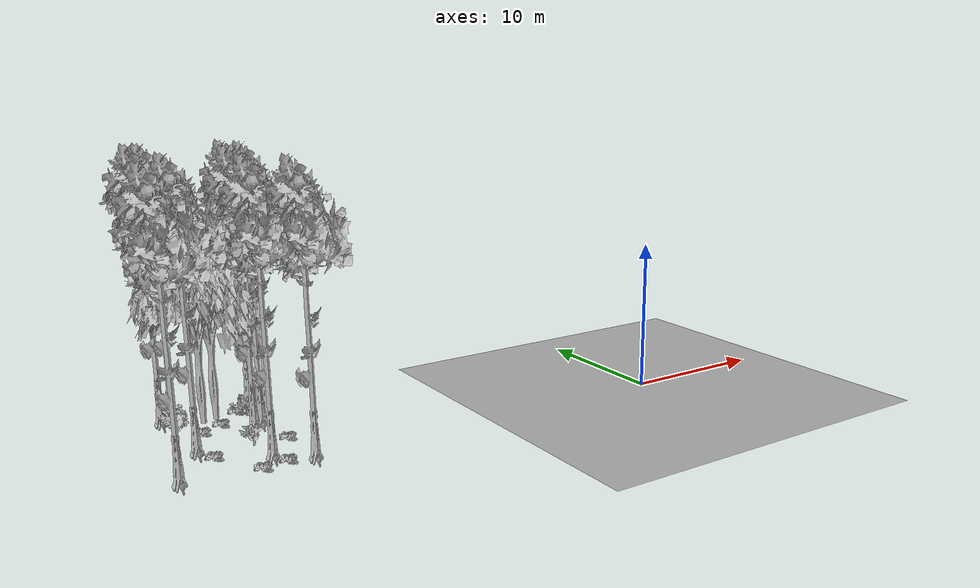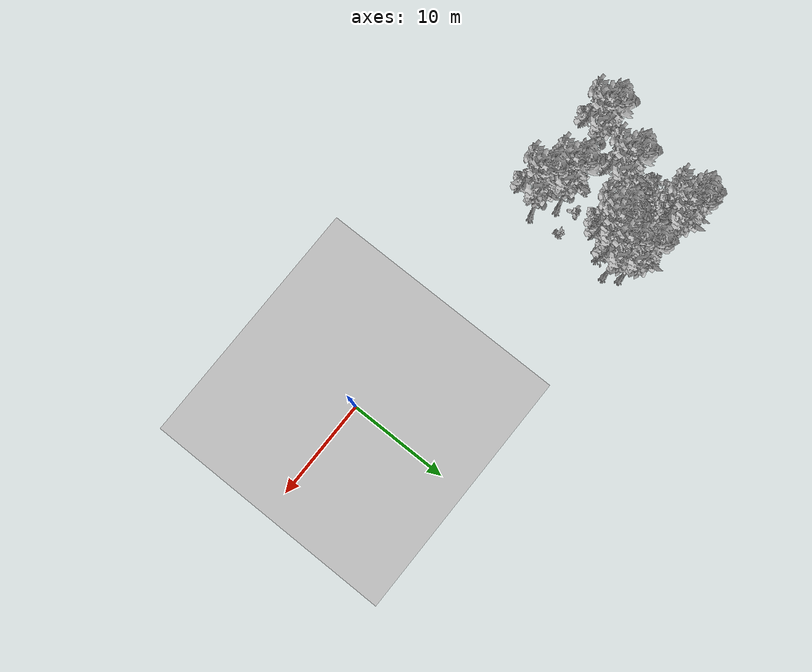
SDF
<sdf version="1.7">
 <world name="default">
  <model name="ground_plane">
   <static>1</static>
   <link name="link">
    <collision name="collision">
     <pose>-50 0 0 0 -0 0</pose>
     <geometry><plane><normal>0 0 1</normal><size>80 80</size></plane></geometry>
     <surface><contact><ode><min_depth>0.01</min_depth><max_vel>0</max_vel></ode></contact></surface>
    </collision>
    <visual name="grass">
     <cast_shadows>0</cast_shadows>
     <geometry>
      <mesh>
       <scale>0.46714285714285714 0.46714285714285714 0.1</scale>
       <uri>file://grass_plane/meshes/grass_plane.dae</uri>
      </mesh>
     </geometry>
    </visual>
   </link>
  </model>
  <model name="Tree 6">
   <static>1</static>
   <pose>-27.933836475124316 9.971024131339455 0 1.57079 -0 0</pose>
   <link name="link">
    <collision name="collision">
     <geometry><mesh><scale>3.5 5 3.5</scale><uri>model://tree_2/meshes/tree_2.obj</uri></mesh></geometry>
    </collision>
    <visual name="visual">
     <geometry><mesh><scale>3.5 5 3.5</scale><uri>model://tree_2/meshes/tree_2.obj</uri></mesh></geometry>
    </visual>
   </link>
  </model>
  <model name="Tree 10">
   <static>1</static>
   <pose>-25.93647866401887 3.074874967592052 0 1.57079 -0 0</pose>
   <link name="link">
    <collision name="collision">
     <geometry><mesh><scale>3.5 5 3.5</scale><uri>model://tree_9/meshes/tree_9.obj</uri></mesh></geometry>
    </collision>
    <visual name="visual">
     <geometry><mesh><scale>3.5 5 3.5</scale><uri>model://tree_9/meshes/tree_9.obj</uri></mesh></geometry>
    </visual>
   </link>
  </model>
  <model name="Tree 25">
   <static>1</static>
   <pose>-23.874072191830358 1.5541618502225703 0 1.57079 -0 0</pose>
   <link name="link">
    <collision name="collision">
     <geometry><mesh><scale>3.5 5 3.5</scale><uri>model://tree_9/meshes/tree_9.obj</uri></mesh></geometry>
    </collision>
    <visual name="visual">
     <geometry><mesh><scale>3.5 5 3.5</scale><uri>model://tree_9/meshes/tree_9.obj</uri></mesh></geometry>
    </visual>
   </link>
  </model>
  <model name="Tree 92">
   <static>1</static>
   <pose>-27.03510599463497 10.263967634765983 0 1.57079 -0 0</pose>
   <link name="link">
    <collision name="collision">
     <geometry><mesh><scale>3.5 5 3.5</scale><uri>model://tree_2/meshes/tree_2.obj</uri></mesh></geometry>
    </collision>
    <visual name="visual">
     <geometry><mesh><scale>3.5 5 3.5</scale><uri>model://tree_2/meshes/tree_2.obj</uri></mesh></geometry>
    </visual>
   </link>
  </model>
  <model name="Tree 100">
   <static>1</static>
   <pose>-29.47319791704583 6.159538547791271 0 1.57079 -0 0</pose>
   <link name="link">
    <collision name="collision">
     <geometry><mesh><scale>3.5 5 3.5</scale><uri>model://tree_9/meshes/tree_9.obj</uri></mesh></geometry>
    </collision>
    <visual name="visual">
     <geometry><mesh><scale>3.5 5 3.5</scale><uri>model://tree_9/meshes/tree_9.obj</uri></mesh></geometry>
    </visual>
   </link>
  </model>
  <model name="Tree 335">
   <static>1</static>
   <pose>-23.581077744409292 10.317523921719662 0 1.57079 -0 0</pose>
   <link name="link">
    <collision name="collision">
     <geometry><mesh><scale>3.5 5 3.5</scale><uri>model://tree_9/meshes/tree_9.obj</uri></mesh></geometry>
    </collision>
    <visual name="visual">
     <geometry><mesh><scale>3.5 5 3.5</scale><uri>model://tree_9/meshes/tree_9.obj</uri></mesh></geometry>
    </visual>
   </link>
  </model>
  <model name="Tree 345">
   <static>1</static>
   <pose>-24.344443440398514 11.627869771685937 0 1.57079 -0 0</pose>
   <link name="link">
    <collision name="collision">
     <geometry><mesh><scale>3.5 5 3.5</scale><uri>model://tree_9/meshes/tree_9.obj</uri></mesh></geometry>
    </collision>
    <visual name="visual">
     <geometry><mesh><scale>3.5 5 3.5</scale><uri>model://tree_9/meshes/tree_9.obj</uri></mesh></geometry>
    </visual>
   </link>
  </model>
  <model name="Tree 349">
   <static>1</static>
   <pose>-29.179767878455028 12.33024798123553 0 1.57079 -0 0</pose>
   <link name="link">
    <collision name="collision">
     <geometry><mesh><scale>3.5 5 3.5</scale><uri>model://tree_9/meshes/tree_9.obj</uri></mesh></geometry>
    </collision>
    <visual name="visual">
     <geometry><mesh><scale>3.5 5 3.5</scale><uri>model://tree_9/meshes/tree_9.obj</uri></mesh></geometry>
    </visual>
   </link>
  </model>
  <model name="Tree 394">
   <static>1</static>
   <pose>-25.205027041423754 8.20902475862411 0 1.57079 -0 0</pose>
   <link name="link">
    <collision name="collision">
     <geometry><mesh><scale>3.5 5 3.5</scale><uri>model://tree_9/meshes/tree_9.obj</uri></mesh></geometry>
    </collision>
    <visual name="visual">
     <geometry><mesh><scale>3.5 5 3.5</scale><uri>model://tree_9/meshes/tree_9.obj</uri></mesh></geometry>
    </visual>
   </link>
  </model>
  <model name="Tree 416">
   <static>1</static>
   <pose>-29.91393668928618 12.23142361629418 0 1.57079 -0 0</pose>
   <link name="link">
    <collision name="collision">
     <geometry><mesh><scale>3.5 5 3.5</scale><uri>model://tree_9/meshes/tree_9.obj</uri></mesh></geometry>
    </collision>
    <visual name="visual">
     <geometry><mesh><scale>3.5 5 3.5</scale><uri>model://tree_9/meshes/tree_9.obj</uri></mesh></geometry>
    </visual>
   </link>
  </model>
  <model name="Tree 488">
   <static>1</static>
   <pose>-31.63750277075983 2.250928446385309 0 1.57079 -0 0</pose>
   <link name="link">
    <collision name="collision">
     <geometry><mesh><scale>3.5 5 3.5</scale><uri>model://tree_9/meshes/tree_9.obj</uri></mesh></geometry>
    </collision>
    <visual name="visual">
     <geometry><mesh><scale>3.5 5 3.5</scale><uri>model://tree_9/meshes/tree_9.obj</uri></mesh></geometry>
    </visual>
   </link>
  </model>
  <model name="Tree 624">
   <static>1</static>
   <pose>-24.562253628646644 8.754854475768184 0 1.57079 -0 0</pose>
   <link name="link">
    <collision name="collision">
     <geometry><mesh><scale>3.5 5 3.5</scale><uri>model://tree_9/meshes/tree_9.obj</uri></mesh></geometry>
    </collision>
    <visual name="visual">
     <geometry><mesh><scale>3.5 5 3.5</scale><uri>model://tree_9/meshes/tree_9.obj</uri></mesh></geometry>
    </visual>
   </link>
  </model>
  <model name="Bush 58">
   <static>1</static>
   <pose>-24.413937323106673 4.5149087698000585 0 1.57079 -0 0</pose>
   <link name="link">
    <collision name="collision">
     <geometry><mesh><scale>2 2 2</scale><uri>model://bush_2/meshes/bush_2.obj</uri></mesh></geometry>
     <surface><contact><collide_without_contact>false</collide_without_contact></contact></surface>
    </collision>
    <visual name="visual">
     <geometry><mesh><scale>2 2 2</scale><uri>model://bush_2/meshes/bush_2.obj</uri></mesh></geometry>
    </visual>
   </link>
  </model>
  <model name="Bush 94">
   <static>1</static>
   <pose>-25.572861129804625 10.56565452932471 0 1.57079 -0 0</pose>
   <link name="link">
    <collision name="collision">
     <geometry><mesh><scale>2 2 2</scale><uri>model://bush_2/meshes/bush_2.obj</uri></mesh></geometry>
     <surface><contact><collide_without_contact>false</collide_without_contact></contact></surface>
    </collision>
    <visual name="visual">
     <geometry><mesh><scale>2 2 2</scale><uri>model://bush_2/meshes/bush_2.obj</uri></mesh></geometry>
    </visual>
   </link>
  </model>
  <model name="Bush 181">
   <static>1</static>
   <pose>-29.12438790901557 3.9534212077692317 0 1.57079 -0 0</pose>
   <link name="link">
    <collision name="collision">
     <geometry><mesh><scale>2 2 2</scale><uri>model://bush_2/meshes/bush_2.obj</uri></mesh></geometry>
     <surface><contact><collide_without_contact>false</collide_without_contact></contact></surface>
    </collision>
    <visual name="visual">
     <geometry><mesh><scale>2 2 2</scale><uri>model://bush_2/meshes/bush_2.obj</uri></mesh></geometry>
    </visual>
   </link>
  </model>
  <model name="Bush 214">
   <static>1</static>
   <pose>-25.71185770678229 1.1737137461170306 0 1.57079 -0 0</pose>
   <link name="link">
    <collision name="collision">
     <geometry><mesh><scale>2 2 2</scale><uri>model://bush_2/meshes/bush_2.obj</uri></mesh></geometry>
     <surface><contact><collide_without_contact>false</collide_without_contact></contact></surface>
    </collision>
    <visual name="visual">
     <geometry><mesh><scale>2 2 2</scale><uri>model://bush_2/meshes/bush_2.obj</uri></mesh></geometry>
    </visual>
   </link>
  </model>
  <model name="Bush 272">
   <static>1</static>
   <pose>-25.327018211420437 9.97624668884719 0 1.57079 -0 0</pose>
   <link name="link">
    <collision name="collision">
     <geometry><mesh><scale>2 2 2</scale><uri>model://bush_4/meshes/bush_4.obj</uri></mesh></geometry>
     <surface><contact><collide_without_contact>false</collide_without_contact></contact></surface>
    </collision>
    <visual name="visual">
     <geometry><mesh><scale>2 2 2</scale><uri>model://bush_4/meshes/bush_4.obj</uri></mesh></geometry>
    </visual>
   </link>
  </model>
  <model name="Bush 279">
   <static>1</static>
   <pose>-24.84057523737124 9.129196742946384 0 1.57079 -0 0</pose>
   <link name="link">
    <collision name="collision">
     <geometry><mesh><scale>2 2 2</scale><uri>model://bush_4/meshes/bush_4.obj</uri></mesh></geometry>
     <surface><contact><collide_without_contact>false</collide_without_contact></contact></surface>
    </collision>
    <visual name="visual">
     <geometry><mesh><scale>2 2 2</scale><uri>model://bush_4/meshes/bush_4.obj</uri></mesh></geometry>
    </visual>
   </link>
  </model>
  <model name="Bush 339">
   <static>1</static>
   <pose>-27.311216681140642 0.8931305080150906 0 1.57079 -0 0</pose>
   <link name="link">
    <collision name="collision">
     <geometry><mesh><scale>2 2 2</scale><uri>model://bush_2/meshes/bush_2.obj</uri></mesh></geometry>
     <surface><contact><collide_without_contact>false</collide_without_contact></contact></surface>
    </collision>
    <visual name="visual">
     <geometry><mesh><scale>2 2 2</scale><uri>model://bush_2/meshes/bush_2.obj</uri></mesh></geometry>
    </visual>
   </link>
  </model>
  <model name="Bush 473">
   <static>1</static>
   <pose>-29.885950203166946 8.84874675289442 0 1.57079 -0 0</pose>
   <link name="link">
    <collision name="collision">
     <geometry><mesh><scale>2 2 2</scale><uri>model://bush_1/meshes/bush_1.obj</uri></mesh></geometry>
     <surface><contact><collide_without_contact>false</collide_without_contact></contact></surface>
    </collision>
    <visual name="visual">
     <geometry><mesh><scale>2 2 2</scale><uri>model://bush_1/meshes/bush_1.obj</uri></mesh></geometry>
    </visual>
   </link>
  </model>
  <model name="Bush 560">
   <static>1</static>
   <pose>-28.529918268819216 8.093220296993636 0 1.57079 -0 0</pose>
   <link name="link">
    <collision name="collision">
     <geometry><mesh><scale>2 2 2</scale><uri>model://bush_2/meshes/bush_2.obj</uri></mesh></geometry>
     <surface><contact><collide_without_contact>false</collide_without_contact></contact></surface>
    </collision>
    <visual name="visual">
     <geometry><mesh><scale>2 2 2</scale><uri>model://bush_2/meshes/bush_2.obj</uri></mesh></geometry>
    </visual>
   </link>
  </model>
  <model name="Bush 583">
   <static>1</static>
   <pose>-27.10645825761282 8.880123588800785 0 1.57079 -0 0</pose>
   <link name="link">
    <collision name="collision">
     <geometry><mesh><scale>2 2 2</scale><uri>model://bush_2/meshes/bush_2.obj</uri></mesh></geometry>
     <surface><contact><collide_without_contact>false</collide_without_contact></contact></surface>
    </collision>
    <visual name="visual">
     <geometry><mesh><scale>2 2 2</scale><uri>model://bush_2/meshes/bush_2.obj</uri></mesh></geometry>
    </visual>
   </link>
  </model>
  <model name="Bush 622">
   <static>1</static>
   <pose>-26.526508935613528 4.579041647117734 0 1.57079 -0 0</pose>
   <link name="link">
    <collision name="collision">
     <geometry><mesh><scale>2 2 2</scale><uri>model://bush_0/meshes/bush_0.obj</uri></mesh></geometry>
     <surface><contact><collide_without_contact>false</collide_without_contact></contact></surface>
    </collision>
    <visual name="visual">
     <geometry><mesh><scale>2 2 2</scale><uri>model://bush_0/meshes/bush_0.obj</uri></mesh></geometry>
    </visual>
   </link>
  </model>
 </world>
</sdf>
